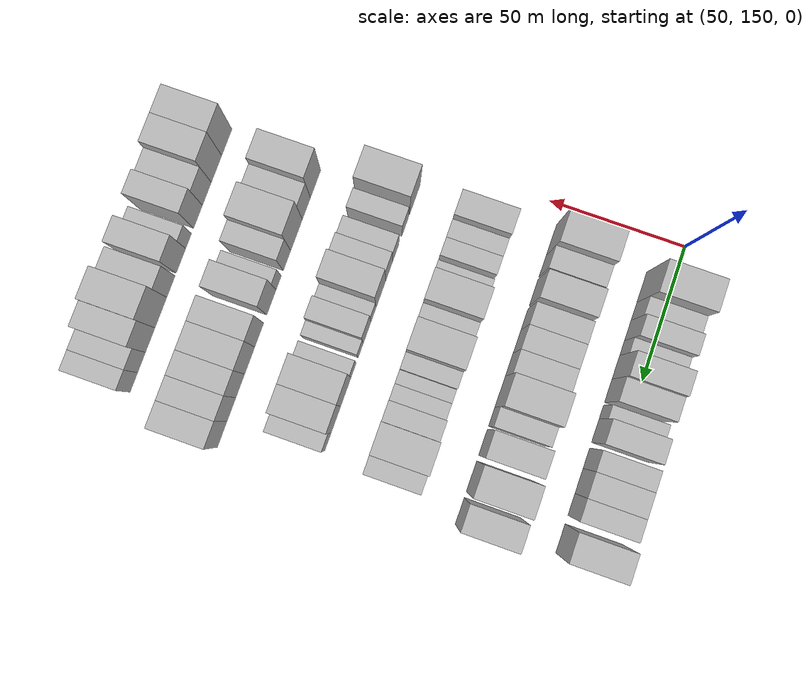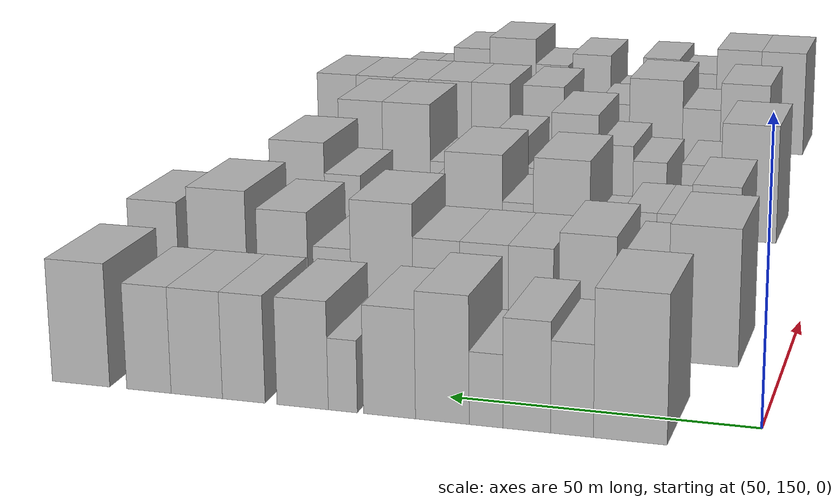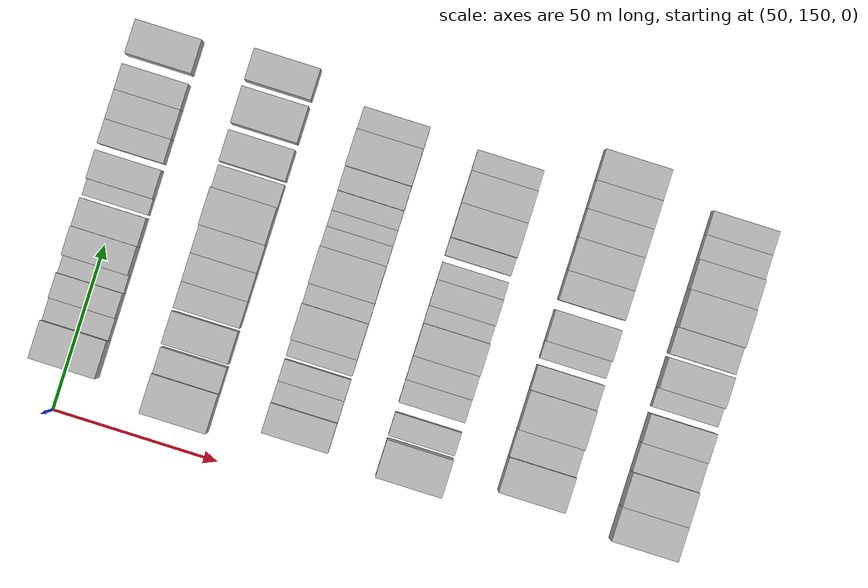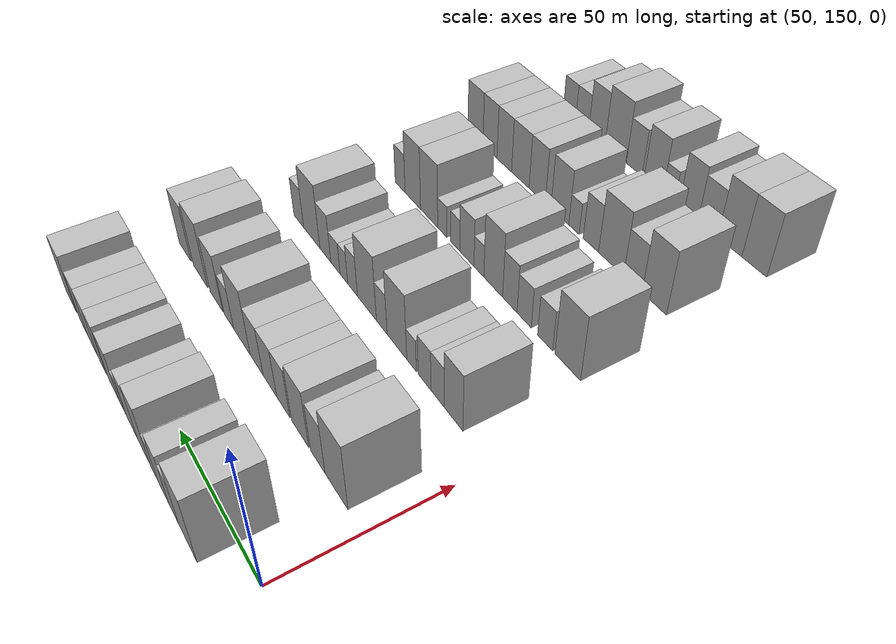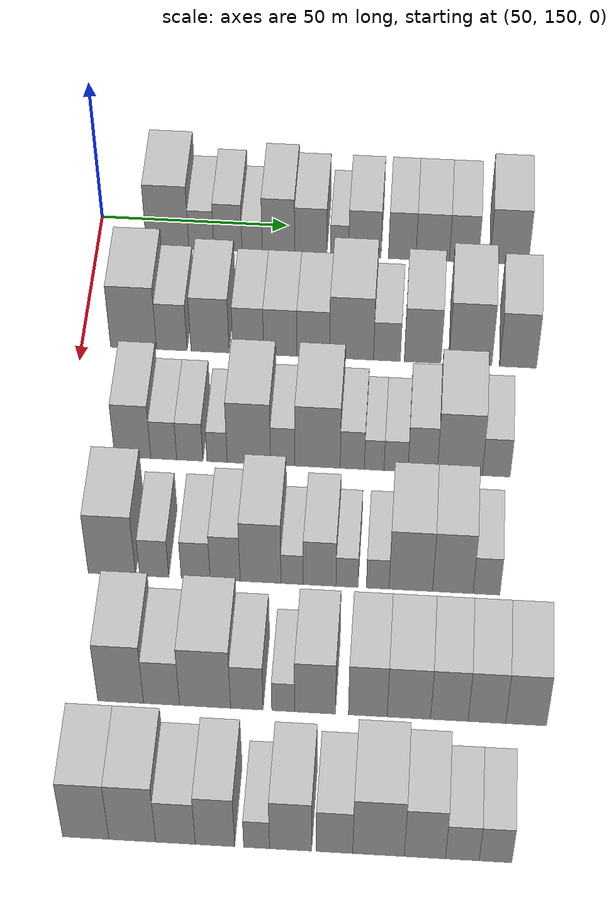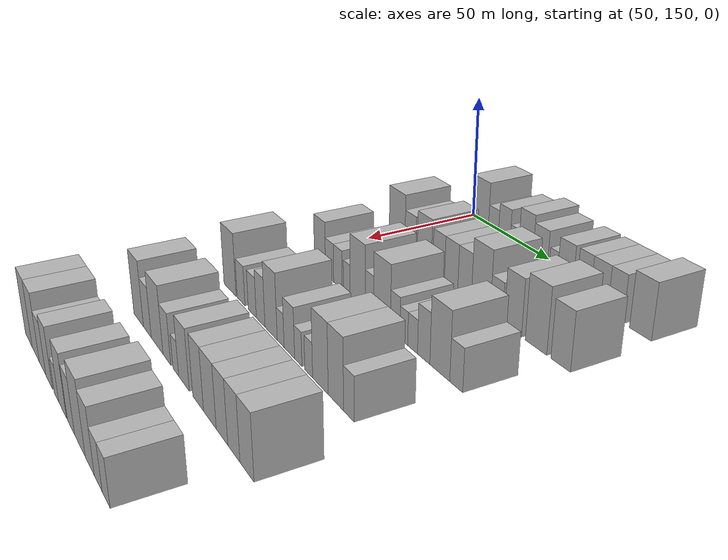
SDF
<sdf version="1.6">
 <world name="default">
  <model name="building_73">
   <static>1</static>
   <pose>50.0000 168.6380 0 0.000000 0.000000 0.000000</pose>
   <link name="link">
    <pose>0 0 12.00 0 0 0</pose>
    <collision name="collision"><geometry><box><size>20.0000 11.3819 24.0000</size></box></geometry></collision>
    <visual name="visual">
     <cast_shadows>0</cast_shadows>
     <geometry><box><size>20.0000 11.3819 24.0000</size></box></geometry>
     <material>
      <script>
       <uri>model://HANNAS_wall/materials/scripts</uri>
       <uri>model://HANNAS_wall/materials/textures</uri>
       <name>vrc/HANNAS_wall</name>
      </script>
     </material>
    </visual>
   </link>
  </model>
  <model name="building_74">
   <static>1</static>
   <pose>50.0000 177.6784 0 0.000000 0.000000 0.000000</pose>
   <link name="link">
    <pose>0 0 7.50 0 0 0</pose>
    <collision name="collision"><geometry><box><size>20.0000 6.6989 15.0000</size></box></geometry></collision>
    <visual name="visual">
     <cast_shadows>0</cast_shadows>
     <geometry><box><size>20.0000 6.6989 15.0000</size></box></geometry>
     <material>
      <script>
       <uri>model://HANNAS_wall/materials/scripts</uri>
       <uri>model://HANNAS_wall/materials/textures</uri>
       <name>vrc/HANNAS_wall</name>
      </script>
     </material>
    </visual>
   </link>
  </model>
  <model name="building_75">
   <static>1</static>
   <pose>50.0000 184.7893 0 0.000000 0.000000 0.000000</pose>
   <link name="link">
    <pose>0 0 9.00 0 0 0</pose>
    <collision name="collision"><geometry><box><size>20.0000 7.5228 18.0000</size></box></geometry></collision>
    <visual name="visual">
     <cast_shadows>0</cast_shadows>
     <geometry><box><size>20.0000 7.5228 18.0000</size></box></geometry>
     <material>
      <script>
       <uri>model://HANNAS_wall/materials/scripts</uri>
       <uri>model://HANNAS_wall/materials/textures</uri>
       <name>vrc/HANNAS_wall</name>
      </script>
     </material>
    </visual>
   </link>
  </model>
  <model name="building_76">
   <static>1</static>
   <pose>50.0000 191.2542 0 0.000000 0.000000 0.000000</pose>
   <link name="link">
    <pose>0 0 6.00 0 0 0</pose>
    <collision name="collision"><geometry><box><size>20.0000 5.4071 12.0000</size></box></geometry></collision>
    <visual name="visual">
     <cast_shadows>0</cast_shadows>
     <geometry><box><size>20.0000 5.4071 12.0000</size></box></geometry>
     <material>
      <script>
       <uri>model://HANNAS_wall/materials/scripts</uri>
       <uri>model://HANNAS_wall/materials/textures</uri>
       <name>vrc/HANNAS_wall</name>
      </script>
     </material>
    </visual>
   </link>
  </model>
  <model name="building_77">
   <static>1</static>
   <pose>50.0000 198.3013 0 0.000000 0.000000 0.000000</pose>
   <link name="link">
    <pose>0 0 10.50 0 0 0</pose>
    <collision name="collision"><geometry><box><size>20.0000 8.6870 21.0000</size></box></geometry></collision>
    <visual name="visual">
     <cast_shadows>0</cast_shadows>
     <geometry><box><size>20.0000 8.6870 21.0000</size></box></geometry>
     <material>
      <script>
       <uri>model://HANNAS_wall/materials/scripts</uri>
       <uri>model://HANNAS_wall/materials/textures</uri>
       <name>vrc/HANNAS_wall</name>
      </script>
     </material>
    </visual>
   </link>
  </model>
  <model name="building_78">
   <static>1</static>
   <pose>50.0000 206.9120 0 0.000000 0.000000 0.000000</pose>
   <link name="link">
    <pose>0 0 9.00 0 0 0</pose>
    <collision name="collision"><geometry><box><size>20.0000 8.5344 18.0000</size></box></geometry></collision>
    <visual name="visual">
     <cast_shadows>0</cast_shadows>
     <geometry><box><size>20.0000 8.5344 18.0000</size></box></geometry>
     <material>
      <script>
       <uri>model://HANNAS_wall/materials/scripts</uri>
       <uri>model://HANNAS_wall/materials/textures</uri>
       <name>vrc/HANNAS_wall</name>
      </script>
     </material>
    </visual>
   </link>
  </model>
  <model name="building_79">
   <static>1</static>
   <pose>50.0000 214.5923 0 0.000000 0.000000 0.000000</pose>
   <link name="link">
    <pose>0 0 6.00 0 0 0</pose>
    <collision name="collision"><geometry><box><size>20.0000 4.8261 12.0000</size></box></geometry></collision>
    <visual name="visual">
     <cast_shadows>0</cast_shadows>
     <geometry><box><size>20.0000 4.8261 12.0000</size></box></geometry>
     <material>
      <script>
       <uri>model://HANNAS_wall/materials/scripts</uri>
       <uri>model://HANNAS_wall/materials/textures</uri>
       <name>vrc/HANNAS_wall</name>
      </script>
     </material>
    </visual>
   </link>
  </model>
  <model name="building_80">
   <static>1</static>
   <pose>50.0000 221.3158 0 0.000000 0.000000 0.000000</pose>
   <link name="link">
    <pose>0 0 9.00 0 0 0</pose>
    <collision name="collision"><geometry><box><size>20.0000 8.6208 18.0000</size></box></geometry></collision>
    <visual name="visual">
     <cast_shadows>0</cast_shadows>
     <geometry><box><size>20.0000 8.6208 18.0000</size></box></geometry>
     <material>
      <script>
       <uri>model://HANNAS_wall/materials/scripts</uri>
       <uri>model://HANNAS_wall/materials/textures</uri>
       <name>vrc/HANNAS_wall</name>
      </script>
     </material>
    </visual>
   </link>
  </model>
  <model name="building_81">
   <static>1</static>
   <pose>50.0000 231.2680 0 0.000000 0.000000 0.000000</pose>
   <link name="link">
    <pose>0 0 9.00 0 0 0</pose>
    <collision name="collision"><geometry><box><size>20.0000 7.2836 18.0000</size></box></geometry></collision>
    <visual name="visual">
     <cast_shadows>0</cast_shadows>
     <geometry><box><size>20.0000 7.2836 18.0000</size></box></geometry>
     <material>
      <script>
       <uri>model://HANNAS_wall/materials/scripts</uri>
       <uri>model://HANNAS_wall/materials/textures</uri>
       <name>vrc/HANNAS_wall</name>
      </script>
     </material>
    </visual>
   </link>
  </model>
  <model name="building_82">
   <static>1</static>
   <pose>50.0000 239.3464 0 0.000000 0.000000 0.000000</pose>
   <link name="link">
    <pose>0 0 9.00 0 0 0</pose>
    <collision name="collision"><geometry><box><size>20.0000 8.8731 18.0000</size></box></geometry></collision>
    <visual name="visual">
     <cast_shadows>0</cast_shadows>
     <geometry><box><size>20.0000 8.8731 18.0000</size></box></geometry>
     <material>
      <script>
       <uri>model://HANNAS_wall/materials/scripts</uri>
       <uri>model://HANNAS_wall/materials/textures</uri>
       <name>vrc/HANNAS_wall</name>
      </script>
     </material>
    </visual>
   </link>
  </model>
  <model name="building_83">
   <static>1</static>
   <pose>50.0000 247.6652 0 0.000000 0.000000 0.000000</pose>
   <link name="link">
    <pose>0 0 9.00 0 0 0</pose>
    <collision name="collision"><geometry><box><size>20.0000 7.7646 18.0000</size></box></geometry></collision>
    <visual name="visual">
     <cast_shadows>0</cast_shadows>
     <geometry><box><size>20.0000 7.7646 18.0000</size></box></geometry>
     <material>
      <script>
       <uri>model://HANNAS_wall/materials/scripts</uri>
       <uri>model://HANNAS_wall/materials/textures</uri>
       <name>vrc/HANNAS_wall</name>
      </script>
     </material>
    </visual>
   </link>
  </model>
  <model name="building_84">
   <static>1</static>
   <pose>50.0000 259.6595 0 0.000000 0.000000 0.000000</pose>
   <link name="link">
    <pose>0 0 10.50 0 0 0</pose>
    <collision name="collision"><geometry><box><size>20.0000 10.2239 21.0000</size></box></geometry></collision>
    <visual name="visual">
     <cast_shadows>0</cast_shadows>
     <geometry><box><size>20.0000 10.2239 21.0000</size></box></geometry>
     <material>
      <script>
       <uri>model://HANNAS_wall/materials/scripts</uri>
       <uri>model://HANNAS_wall/materials/textures</uri>
       <name>vrc/HANNAS_wall</name>
      </script>
     </material>
    </visual>
   </link>
  </model>
  <model name="building_203">
   <static>1</static>
   <pose>85.0000 163.3656 0 0.000000 0.000000 0.000000</pose>
   <link name="link">
    <pose>0 0 12.00 0 0 0</pose>
    <collision name="collision"><geometry><box><size>20.0000 11.8987 24.0000</size></box></geometry></collision>
    <visual name="visual">
     <cast_shadows>0</cast_shadows>
     <geometry><box><size>20.0000 11.8987 24.0000</size></box></geometry>
     <material>
      <script>
       <uri>model://HANNAS_wall/materials/scripts</uri>
       <uri>model://HANNAS_wall/materials/textures</uri>
       <name>vrc/HANNAS_wall</name>
      </script>
     </material>
    </visual>
   </link>
  </model>
  <model name="building_204">
   <static>1</static>
   <pose>85.0000 173.2741 0 0.000000 0.000000 0.000000</pose>
   <link name="link">
    <pose>0 0 9.00 0 0 0</pose>
    <collision name="collision"><geometry><box><size>20.0000 7.9184 18.0000</size></box></geometry></collision>
    <visual name="visual">
     <cast_shadows>0</cast_shadows>
     <geometry><box><size>20.0000 7.9184 18.0000</size></box></geometry>
     <material>
      <script>
       <uri>model://HANNAS_wall/materials/scripts</uri>
       <uri>model://HANNAS_wall/materials/textures</uri>
       <name>vrc/HANNAS_wall</name>
      </script>
     </material>
    </visual>
   </link>
  </model>
  <model name="building_205">
   <static>1</static>
   <pose>85.0000 183.1590 0 0.000000 0.000000 0.000000</pose>
   <link name="link">
    <pose>0 0 10.50 0 0 0</pose>
    <collision name="collision"><geometry><box><size>20.0000 9.8513 21.0000</size></box></geometry></collision>
    <visual name="visual">
     <cast_shadows>0</cast_shadows>
     <geometry><box><size>20.0000 9.8513 21.0000</size></box></geometry>
     <material>
      <script>
       <uri>model://HANNAS_wall/materials/scripts</uri>
       <uri>model://HANNAS_wall/materials/textures</uri>
       <name>vrc/HANNAS_wall</name>
      </script>
     </material>
    </visual>
   </link>
  </model>
  <model name="building_206">
   <static>1</static>
   <pose>85.0000 193.0491 0 0.000000 0.000000 0.000000</pose>
   <link name="link">
    <pose>0 0 9.00 0 0 0</pose>
    <collision name="collision"><geometry><box><size>20.0000 7.9290 18.0000</size></box></geometry></collision>
    <visual name="visual">
     <cast_shadows>0</cast_shadows>
     <geometry><box><size>20.0000 7.9290 18.0000</size></box></geometry>
     <material>
      <script>
       <uri>model://HANNAS_wall/materials/scripts</uri>
       <uri>model://HANNAS_wall/materials/textures</uri>
       <name>vrc/HANNAS_wall</name>
      </script>
     </material>
    </visual>
   </link>
  </model>
  <model name="building_207">
   <static>1</static>
   <pose>85.0000 201.2965 0 0.000000 0.000000 0.000000</pose>
   <link name="link">
    <pose>0 0 9.00 0 0 0</pose>
    <collision name="collision"><geometry><box><size>20.0000 8.5658 18.0000</size></box></geometry></collision>
    <visual name="visual">
     <cast_shadows>0</cast_shadows>
     <geometry><box><size>20.0000 8.5658 18.0000</size></box></geometry>
     <material>
      <script>
       <uri>model://HANNAS_wall/materials/scripts</uri>
       <uri>model://HANNAS_wall/materials/textures</uri>
       <name>vrc/HANNAS_wall</name>
      </script>
     </material>
    </visual>
   </link>
  </model>
  <model name="building_208">
   <static>1</static>
   <pose>85.0000 209.7942 0 0.000000 0.000000 0.000000</pose>
   <link name="link">
    <pose>0 0 9.00 0 0 0</pose>
    <collision name="collision"><geometry><box><size>20.0000 8.4296 18.0000</size></box></geometry></collision>
    <visual name="visual">
     <cast_shadows>0</cast_shadows>
     <geometry><box><size>20.0000 8.4296 18.0000</size></box></geometry>
     <material>
      <script>
       <uri>model://HANNAS_wall/materials/scripts</uri>
       <uri>model://HANNAS_wall/materials/textures</uri>
       <name>vrc/HANNAS_wall</name>
      </script>
     </material>
    </visual>
   </link>
  </model>
  <model name="building_209">
   <static>1</static>
   <pose>85.0000 219.6499 0 0.000000 0.000000 0.000000</pose>
   <link name="link">
    <pose>0 0 12.00 0 0 0</pose>
    <collision name="collision"><geometry><box><size>20.0000 11.2817 24.0000</size></box></geometry></collision>
    <visual name="visual">
     <cast_shadows>0</cast_shadows>
     <geometry><box><size>20.0000 11.2817 24.0000</size></box></geometry>
     <material>
      <script>
       <uri>model://HANNAS_wall/materials/scripts</uri>
       <uri>model://HANNAS_wall/materials/textures</uri>
       <name>vrc/HANNAS_wall</name>
      </script>
     </material>
    </visual>
   </link>
  </model>
  <model name="building_210">
   <static>1</static>
   <pose>85.0000 228.7415 0 0.000000 0.000000 0.000000</pose>
   <link name="link">
    <pose>0 0 7.50 0 0 0</pose>
    <collision name="collision"><geometry><box><size>20.0000 6.9014 15.0000</size></box></geometry></collision>
    <visual name="visual">
     <cast_shadows>0</cast_shadows>
     <geometry><box><size>20.0000 6.9014 15.0000</size></box></geometry>
     <material>
      <script>
       <uri>model://HANNAS_wall/materials/scripts</uri>
       <uri>model://HANNAS_wall/materials/textures</uri>
       <name>vrc/HANNAS_wall</name>
      </script>
     </material>
    </visual>
   </link>
  </model>
  <model name="building_211">
   <static>1</static>
   <pose>85.0000 237.8938 0 0.000000 0.000000 0.000000</pose>
   <link name="link">
    <pose>0 0 10.50 0 0 0</pose>
    <collision name="collision"><geometry><box><size>20.0000 9.4034 21.0000</size></box></geometry></collision>
    <visual name="visual">
     <cast_shadows>0</cast_shadows>
     <geometry><box><size>20.0000 9.4034 21.0000</size></box></geometry>
     <material>
      <script>
       <uri>model://HANNAS_wall/materials/scripts</uri>
       <uri>model://HANNAS_wall/materials/textures</uri>
       <name>vrc/HANNAS_wall</name>
      </script>
     </material>
    </visual>
   </link>
  </model>
  <model name="building_212">
   <static>1</static>
   <pose>85.0000 250.1115 0 0.000000 0.000000 0.000000</pose>
   <link name="link">
    <pose>0 0 12.00 0 0 0</pose>
    <collision name="collision"><geometry><box><size>20.0000 11.0319 24.0000</size></box></geometry></collision>
    <visual name="visual">
     <cast_shadows>0</cast_shadows>
     <geometry><box><size>20.0000 11.0319 24.0000</size></box></geometry>
     <material>
      <script>
       <uri>model://HANNAS_wall/materials/scripts</uri>
       <uri>model://HANNAS_wall/materials/textures</uri>
       <name>vrc/HANNAS_wall</name>
      </script>
     </material>
    </visual>
   </link>
  </model>
  <model name="building_213">
   <static>1</static>
   <pose>85.0000 262.3470 0 0.000000 0.000000 0.000000</pose>
   <link name="link">
    <pose>0 0 10.50 0 0 0</pose>
    <collision name="collision"><geometry><box><size>20.0000 9.4391 21.0000</size></box></geometry></collision>
    <visual name="visual">
     <cast_shadows>0</cast_shadows>
     <geometry><box><size>20.0000 9.4391 21.0000</size></box></geometry>
     <material>
      <script>
       <uri>model://HANNAS_wall/materials/scripts</uri>
       <uri>model://HANNAS_wall/materials/textures</uri>
       <name>vrc/HANNAS_wall</name>
      </script>
     </material>
    </visual>
   </link>
  </model>
  <model name="building_331">
   <static>1</static>
   <pose>120.0000 167.0163 0 0.000000 0.000000 0.000000</pose>
   <link name="link">
    <pose>0 0 10.50 0 0 0</pose>
    <collision name="collision"><geometry><box><size>20.0000 9.0252 21.0000</size></box></geometry></collision>
    <visual name="visual">
     <cast_shadows>0</cast_shadows>
     <geometry><box><size>20.0000 9.0252 21.0000</size></box></geometry>
     <material>
      <script>
       <uri>model://HANNAS_wall/materials/scripts</uri>
       <uri>model://HANNAS_wall/materials/textures</uri>
       <name>vrc/HANNAS_wall</name>
      </script>
     </material>
    </visual>
   </link>
  </model>
  <model name="building_332">
   <static>1</static>
   <pose>120.0000 174.7617 0 0.000000 0.000000 0.000000</pose>
   <link name="link">
    <pose>0 0 7.50 0 0 0</pose>
    <collision name="collision"><geometry><box><size>20.0000 6.4657 15.0000</size></box></geometry></collision>
    <visual name="visual">
     <cast_shadows>0</cast_shadows>
     <geometry><box><size>20.0000 6.4657 15.0000</size></box></geometry>
     <material>
      <script>
       <uri>model://HANNAS_wall/materials/scripts</uri>
       <uri>model://HANNAS_wall/materials/textures</uri>
       <name>vrc/HANNAS_wall</name>
      </script>
     </material>
    </visual>
   </link>
  </model>
  <model name="building_333">
   <static>1</static>
   <pose>120.0000 181.2656 0 0.000000 0.000000 0.000000</pose>
   <link name="link">
    <pose>0 0 7.50 0 0 0</pose>
    <collision name="collision"><geometry><box><size>20.0000 6.5421 15.0000</size></box></geometry></collision>
    <visual name="visual">
     <cast_shadows>0</cast_shadows>
     <geometry><box><size>20.0000 6.5421 15.0000</size></box></geometry>
     <material>
      <script>
       <uri>model://HANNAS_wall/materials/scripts</uri>
       <uri>model://HANNAS_wall/materials/textures</uri>
       <name>vrc/HANNAS_wall</name>
      </script>
     </material>
    </visual>
   </link>
  </model>
  <model name="building_334">
   <static>1</static>
   <pose>120.0000 188.0616 0 0.000000 0.000000 0.000000</pose>
   <link name="link">
    <pose>0 0 6.00 0 0 0</pose>
    <collision name="collision"><geometry><box><size>20.0000 5.0499 12.0000</size></box></geometry></collision>
    <visual name="visual">
     <cast_shadows>0</cast_shadows>
     <geometry><box><size>20.0000 5.0499 12.0000</size></box></geometry>
     <material>
      <script>
       <uri>model://HANNAS_wall/materials/scripts</uri>
       <uri>model://HANNAS_wall/materials/textures</uri>
       <name>vrc/HANNAS_wall</name>
      </script>
     </material>
    </visual>
   </link>
  </model>
  <model name="building_335">
   <static>1</static>
   <pose>120.0000 195.9981 0 0.000000 0.000000 0.000000</pose>
   <link name="link">
    <pose>0 0 12.00 0 0 0</pose>
    <collision name="collision"><geometry><box><size>20.0000 10.8229 24.0000</size></box></geometry></collision>
    <visual name="visual">
     <cast_shadows>0</cast_shadows>
     <geometry><box><size>20.0000 10.8229 24.0000</size></box></geometry>
     <material>
      <script>
       <uri>model://HANNAS_wall/materials/scripts</uri>
       <uri>model://HANNAS_wall/materials/textures</uri>
       <name>vrc/HANNAS_wall</name>
      </script>
     </material>
    </visual>
   </link>
  </model>
  <model name="building_336">
   <static>1</static>
   <pose>120.0000 204.4289 0 0.000000 0.000000 0.000000</pose>
   <link name="link">
    <pose>0 0 7.50 0 0 0</pose>
    <collision name="collision"><geometry><box><size>20.0000 6.0387 15.0000</size></box></geometry></collision>
    <visual name="visual">
     <cast_shadows>0</cast_shadows>
     <geometry><box><size>20.0000 6.0387 15.0000</size></box></geometry>
     <material>
      <script>
       <uri>model://HANNAS_wall/materials/scripts</uri>
       <uri>model://HANNAS_wall/materials/textures</uri>
       <name>vrc/HANNAS_wall</name>
      </script>
     </material>
    </visual>
   </link>
  </model>
  <model name="building_337">
   <static>1</static>
   <pose>120.0000 213.0541 0 0.000000 0.000000 0.000000</pose>
   <link name="link">
    <pose>0 0 12.00 0 0 0</pose>
    <collision name="collision"><geometry><box><size>20.0000 11.2118 24.0000</size></box></geometry></collision>
    <visual name="visual">
     <cast_shadows>0</cast_shadows>
     <geometry><box><size>20.0000 11.2118 24.0000</size></box></geometry>
     <material>
      <script>
       <uri>model://HANNAS_wall/materials/scripts</uri>
       <uri>model://HANNAS_wall/materials/textures</uri>
       <name>vrc/HANNAS_wall</name>
      </script>
     </material>
    </visual>
   </link>
  </model>
  <model name="building_338">
   <static>1</static>
   <pose>120.0000 221.6618 0 0.000000 0.000000 0.000000</pose>
   <link name="link">
    <pose>0 0 7.50 0 0 0</pose>
    <collision name="collision"><geometry><box><size>20.0000 6.0037 15.0000</size></box></geometry></collision>
    <visual name="visual">
     <cast_shadows>0</cast_shadows>
     <geometry><box><size>20.0000 6.0037 15.0000</size></box></geometry>
     <material>
      <script>
       <uri>model://HANNAS_wall/materials/scripts</uri>
       <uri>model://HANNAS_wall/materials/textures</uri>
       <name>vrc/HANNAS_wall</name>
      </script>
     </material>
    </visual>
   </link>
  </model>
  <model name="building_339">
   <static>1</static>
   <pose>120.0000 227.0990 0 0.000000 0.000000 0.000000</pose>
   <link name="link">
    <pose>0 0 6.00 0 0 0</pose>
    <collision name="collision"><geometry><box><size>20.0000 4.8706 12.0000</size></box></geometry></collision>
    <visual name="visual">
     <cast_shadows>0</cast_shadows>
     <geometry><box><size>20.0000 4.8706 12.0000</size></box></geometry>
     <material>
      <script>
       <uri>model://HANNAS_wall/materials/scripts</uri>
       <uri>model://HANNAS_wall/materials/textures</uri>
       <name>vrc/HANNAS_wall</name>
      </script>
     </material>
    </visual>
   </link>
  </model>
  <model name="building_340">
   <static>1</static>
   <pose>120.0000 232.4921 0 0.000000 0.000000 0.000000</pose>
   <link name="link">
    <pose>0 0 6.00 0 0 0</pose>
    <collision name="collision"><geometry><box><size>20.0000 5.9156 12.0000</size></box></geometry></collision>
    <visual name="visual">
     <cast_shadows>0</cast_shadows>
     <geometry><box><size>20.0000 5.9156 12.0000</size></box></geometry>
     <material>
      <script>
       <uri>model://HANNAS_wall/materials/scripts</uri>
       <uri>model://HANNAS_wall/materials/textures</uri>
       <name>vrc/HANNAS_wall</name>
      </script>
     </material>
    </visual>
   </link>
  </model>
  <model name="building_341">
   <static>1</static>
   <pose>120.0000 239.0733 0 0.000000 0.000000 0.000000</pose>
   <link name="link">
    <pose>0 0 9.00 0 0 0</pose>
    <collision name="collision"><geometry><box><size>20.0000 7.2468 18.0000</size></box></geometry></collision>
    <visual name="visual">
     <cast_shadows>0</cast_shadows>
     <geometry><box><size>20.0000 7.2468 18.0000</size></box></geometry>
     <material>
      <script>
       <uri>model://HANNAS_wall/materials/scripts</uri>
       <uri>model://HANNAS_wall/materials/textures</uri>
       <name>vrc/HANNAS_wall</name>
      </script>
     </material>
    </visual>
   </link>
  </model>
  <model name="building_342">
   <static>1</static>
   <pose>120.0000 248.2654 0 0.000000 0.000000 0.000000</pose>
   <link name="link">
    <pose>0 0 12.00 0 0 0</pose>
    <collision name="collision"><geometry><box><size>20.0000 11.1375 24.0000</size></box></geometry></collision>
    <visual name="visual">
     <cast_shadows>0</cast_shadows>
     <geometry><box><size>20.0000 11.1375 24.0000</size></box></geometry>
     <material>
      <script>
       <uri>model://HANNAS_wall/materials/scripts</uri>
       <uri>model://HANNAS_wall/materials/textures</uri>
       <name>vrc/HANNAS_wall</name>
      </script>
     </material>
    </visual>
   </link>
  </model>
  <model name="building_343">
   <static>1</static>
   <pose>120.0000 257.2811 0 0.000000 0.000000 0.000000</pose>
   <link name="link">
    <pose>0 0 7.50 0 0 0</pose>
    <collision name="collision"><geometry><box><size>20.0000 6.8939 15.0000</size></box></geometry></collision>
    <visual name="visual">
     <cast_shadows>0</cast_shadows>
     <geometry><box><size>20.0000 6.8939 15.0000</size></box></geometry>
     <material>
      <script>
       <uri>model://HANNAS_wall/materials/scripts</uri>
       <uri>model://HANNAS_wall/materials/textures</uri>
       <name>vrc/HANNAS_wall</name>
      </script>
     </material>
    </visual>
   </link>
  </model>
  <model name="building_463">
   <static>1</static>
   <pose>155.0000 165.8722 0 0.000000 0.000000 0.000000</pose>
   <link name="link">
    <pose>0 0 12.00 0 0 0</pose>
    <collision name="collision"><geometry><box><size>20.0000 11.3779 24.0000</size></box></geometry></collision>
    <visual name="visual">
     <cast_shadows>0</cast_shadows>
     <geometry><box><size>20.0000 11.3779 24.0000</size></box></geometry>
     <material>
      <script>
       <uri>model://HANNAS_wall/materials/scripts</uri>
       <uri>model://HANNAS_wall/materials/textures</uri>
       <name>vrc/HANNAS_wall</name>
      </script>
     </material>
    </visual>
   </link>
  </model>
  <model name="building_464">
   <static>1</static>
   <pose>155.0000 176.0579 0 0.000000 0.000000 0.000000</pose>
   <link name="link">
    <pose>0 0 7.50 0 0 0</pose>
    <collision name="collision"><geometry><box><size>20.0000 6.9935 15.0000</size></box></geometry></collision>
    <visual name="visual">
     <cast_shadows>0</cast_shadows>
     <geometry><box><size>20.0000 6.9935 15.0000</size></box></geometry>
     <material>
      <script>
       <uri>model://HANNAS_wall/materials/scripts</uri>
       <uri>model://HANNAS_wall/materials/textures</uri>
       <name>vrc/HANNAS_wall</name>
      </script>
     </material>
    </visual>
   </link>
  </model>
  <model name="building_465">
   <static>1</static>
   <pose>155.0000 186.0066 0 0.000000 0.000000 0.000000</pose>
   <link name="link">
    <pose>0 0 7.50 0 0 0</pose>
    <collision name="collision"><geometry><box><size>20.0000 6.9038 15.0000</size></box></geometry></collision>
    <visual name="visual">
     <cast_shadows>0</cast_shadows>
     <geometry><box><size>20.0000 6.9038 15.0000</size></box></geometry>
     <material>
      <script>
       <uri>model://HANNAS_wall/materials/scripts</uri>
       <uri>model://HANNAS_wall/materials/textures</uri>
       <name>vrc/HANNAS_wall</name>
      </script>
     </material>
    </visual>
   </link>
  </model>
  <model name="building_466">
   <static>1</static>
   <pose>155.0000 193.0714 0 0.000000 0.000000 0.000000</pose>
   <link name="link">
    <pose>0 0 9.00 0 0 0</pose>
    <collision name="collision"><geometry><box><size>20.0000 7.2258 18.0000</size></box></geometry></collision>
    <visual name="visual">
     <cast_shadows>0</cast_shadows>
     <geometry><box><size>20.0000 7.2258 18.0000</size></box></geometry>
     <material>
      <script>
       <uri>model://HANNAS_wall/materials/scripts</uri>
       <uri>model://HANNAS_wall/materials/textures</uri>
       <name>vrc/HANNAS_wall</name>
      </script>
     </material>
    </visual>
   </link>
  </model>
  <model name="building_467">
   <static>1</static>
   <pose>155.0000 201.5711 0 0.000000 0.000000 0.000000</pose>
   <link name="link">
    <pose>0 0 12.00 0 0 0</pose>
    <collision name="collision"><geometry><box><size>20.0000 9.7734 24.0000</size></box></geometry></collision>
    <visual name="visual">
     <cast_shadows>0</cast_shadows>
     <geometry><box><size>20.0000 9.7734 24.0000</size></box></geometry>
     <material>
      <script>
       <uri>model://HANNAS_wall/materials/scripts</uri>
       <uri>model://HANNAS_wall/materials/textures</uri>
       <name>vrc/HANNAS_wall</name>
      </script>
     </material>
    </visual>
   </link>
  </model>
  <model name="building_468">
   <static>1</static>
   <pose>155.0000 209.1190 0 0.000000 0.000000 0.000000</pose>
   <link name="link">
    <pose>0 0 6.00 0 0 0</pose>
    <collision name="collision"><geometry><box><size>20.0000 5.3224 12.0000</size></box></geometry></collision>
    <visual name="visual">
     <cast_shadows>0</cast_shadows>
     <geometry><box><size>20.0000 5.3224 12.0000</size></box></geometry>
     <material>
      <script>
       <uri>model://HANNAS_wall/materials/scripts</uri>
       <uri>model://HANNAS_wall/materials/textures</uri>
       <name>vrc/HANNAS_wall</name>
      </script>
     </material>
    </visual>
   </link>
  </model>
  <model name="building_469">
   <static>1</static>
   <pose>155.0000 215.6907 0 0.000000 0.000000 0.000000</pose>
   <link name="link">
    <pose>0 0 9.00 0 0 0</pose>
    <collision name="collision"><geometry><box><size>20.0000 7.8210 18.0000</size></box></geometry></collision>
    <visual name="visual">
     <cast_shadows>0</cast_shadows>
     <geometry><box><size>20.0000 7.8210 18.0000</size></box></geometry>
     <material>
      <script>
       <uri>model://HANNAS_wall/materials/scripts</uri>
       <uri>model://HANNAS_wall/materials/textures</uri>
       <name>vrc/HANNAS_wall</name>
      </script>
     </material>
    </visual>
   </link>
  </model>
  <model name="building_470">
   <static>1</static>
   <pose>155.0000 222.2373 0 0.000000 0.000000 0.000000</pose>
   <link name="link">
    <pose>0 0 6.00 0 0 0</pose>
    <collision name="collision"><geometry><box><size>20.0000 5.2723 12.0000</size></box></geometry></collision>
    <visual name="visual">
     <cast_shadows>0</cast_shadows>
     <geometry><box><size>20.0000 5.2723 12.0000</size></box></geometry>
     <material>
      <script>
       <uri>model://HANNAS_wall/materials/scripts</uri>
       <uri>model://HANNAS_wall/materials/textures</uri>
       <name>vrc/HANNAS_wall</name>
      </script>
     </material>
    </visual>
   </link>
  </model>
  <model name="building_471">
   <static>1</static>
   <pose>155.0000 229.5753 0 0.000000 0.000000 0.000000</pose>
   <link name="link">
    <pose>0 0 6.00 0 0 0</pose>
    <collision name="collision"><geometry><box><size>20.0000 5.4036 12.0000</size></box></geometry></collision>
    <visual name="visual">
     <cast_shadows>0</cast_shadows>
     <geometry><box><size>20.0000 5.4036 12.0000</size></box></geometry>
     <material>
      <script>
       <uri>model://HANNAS_wall/materials/scripts</uri>
       <uri>model://HANNAS_wall/materials/textures</uri>
       <name>vrc/HANNAS_wall</name>
      </script>
     </material>
    </visual>
   </link>
  </model>
  <model name="building_472">
   <static>1</static>
   <pose>155.0000 237.4523 0 0.000000 0.000000 0.000000</pose>
   <link name="link">
    <pose>0 0 12.00 0 0 0</pose>
    <collision name="collision"><geometry><box><size>20.0000 10.3504 24.0000</size></box></geometry></collision>
    <visual name="visual">
     <cast_shadows>0</cast_shadows>
     <geometry><box><size>20.0000 10.3504 24.0000</size></box></geometry>
     <material>
      <script>
       <uri>model://HANNAS_wall/materials/scripts</uri>
       <uri>model://HANNAS_wall/materials/textures</uri>
       <name>vrc/HANNAS_wall</name>
      </script>
     </material>
    </visual>
   </link>
  </model>
  <model name="building_473">
   <static>1</static>
   <pose>155.0000 247.4533 0 0.000000 0.000000 0.000000</pose>
   <link name="link">
    <pose>0 0 12.00 0 0 0</pose>
    <collision name="collision"><geometry><box><size>20.0000 9.6515 24.0000</size></box></geometry></collision>
    <visual name="visual">
     <cast_shadows>0</cast_shadows>
     <geometry><box><size>20.0000 9.6515 24.0000</size></box></geometry>
     <material>
      <script>
       <uri>model://HANNAS_wall/materials/scripts</uri>
       <uri>model://HANNAS_wall/materials/textures</uri>
       <name>vrc/HANNAS_wall</name>
      </script>
     </material>
    </visual>
   </link>
  </model>
  <model name="building_474">
   <static>1</static>
   <pose>155.0000 255.4719 0 0.000000 0.000000 0.000000</pose>
   <link name="link">
    <pose>0 0 7.50 0 0 0</pose>
    <collision name="collision"><geometry><box><size>20.0000 6.3858 15.0000</size></box></geometry></collision>
    <visual name="visual">
     <cast_shadows>0</cast_shadows>
     <geometry><box><size>20.0000 6.3858 15.0000</size></box></geometry>
     <material>
      <script>
       <uri>model://HANNAS_wall/materials/scripts</uri>
       <uri>model://HANNAS_wall/materials/textures</uri>
       <name>vrc/HANNAS_wall</name>
      </script>
     </material>
    </visual>
   </link>
  </model>
  <model name="building_594">
   <static>1</static>
   <pose>190.0000 171.9593 0 0.000000 0.000000 0.000000</pose>
   <link name="link">
    <pose>0 0 12.00 0 0 0</pose>
    <collision name="collision"><geometry><box><size>20.0000 10.5848 24.0000</size></box></geometry></collision>
    <visual name="visual">
     <cast_shadows>0</cast_shadows>
     <geometry><box><size>20.0000 10.5848 24.0000</size></box></geometry>
     <material>
      <script>
       <uri>model://HANNAS_wall/materials/scripts</uri>
       <uri>model://HANNAS_wall/materials/textures</uri>
       <name>vrc/HANNAS_wall</name>
      </script>
     </material>
    </visual>
   </link>
  </model>
  <model name="building_595">
   <static>1</static>
   <pose>190.0000 181.3984 0 0.000000 0.000000 0.000000</pose>
   <link name="link">
    <pose>0 0 9.00 0 0 0</pose>
    <collision name="collision"><geometry><box><size>20.0000 8.2934 18.0000</size></box></geometry></collision>
    <visual name="visual">
     <cast_shadows>0</cast_shadows>
     <geometry><box><size>20.0000 8.2934 18.0000</size></box></geometry>
     <material>
      <script>
       <uri>model://HANNAS_wall/materials/scripts</uri>
       <uri>model://HANNAS_wall/materials/textures</uri>
       <name>vrc/HANNAS_wall</name>
      </script>
     </material>
    </visual>
   </link>
  </model>
  <model name="building_596">
   <static>1</static>
   <pose>190.0000 191.4427 0 0.000000 0.000000 0.000000</pose>
   <link name="link">
    <pose>0 0 12.00 0 0 0</pose>
    <collision name="collision"><geometry><box><size>20.0000 11.7952 24.0000</size></box></geometry></collision>
    <visual name="visual">
     <cast_shadows>0</cast_shadows>
     <geometry><box><size>20.0000 11.7952 24.0000</size></box></geometry>
     <material>
      <script>
       <uri>model://HANNAS_wall/materials/scripts</uri>
       <uri>model://HANNAS_wall/materials/textures</uri>
       <name>vrc/HANNAS_wall</name>
      </script>
     </material>
    </visual>
   </link>
  </model>
  <model name="building_597">
   <static>1</static>
   <pose>190.0000 201.0932 0 0.000000 0.000000 0.000000</pose>
   <link name="link">
    <pose>0 0 9.00 0 0 0</pose>
    <collision name="collision"><geometry><box><size>20.0000 7.5058 18.0000</size></box></geometry></collision>
    <visual name="visual">
     <cast_shadows>0</cast_shadows>
     <geometry><box><size>20.0000 7.5058 18.0000</size></box></geometry>
     <material>
      <script>
       <uri>model://HANNAS_wall/materials/scripts</uri>
       <uri>model://HANNAS_wall/materials/textures</uri>
       <name>vrc/HANNAS_wall</name>
      </script>
     </material>
    </visual>
   </link>
  </model>
  <model name="building_598">
   <static>1</static>
   <pose>190.0000 209.4794 0 0.000000 0.000000 0.000000</pose>
   <link name="link">
    <pose>0 0 6.00 0 0 0</pose>
    <collision name="collision"><geometry><box><size>20.0000 5.2666 12.0000</size></box></geometry></collision>
    <visual name="visual">
     <cast_shadows>0</cast_shadows>
     <geometry><box><size>20.0000 5.2666 12.0000</size></box></geometry>
     <material>
      <script>
       <uri>model://HANNAS_wall/materials/scripts</uri>
       <uri>model://HANNAS_wall/materials/textures</uri>
       <name>vrc/HANNAS_wall</name>
      </script>
     </material>
    </visual>
   </link>
  </model>
  <model name="building_599">
   <static>1</static>
   <pose>190.0000 216.7896 0 0.000000 0.000000 0.000000</pose>
   <link name="link">
    <pose>0 0 10.50 0 0 0</pose>
    <collision name="collision"><geometry><box><size>20.0000 9.3539 21.0000</size></box></geometry></collision>
    <visual name="visual">
     <cast_shadows>0</cast_shadows>
     <geometry><box><size>20.0000 9.3539 21.0000</size></box></geometry>
     <material>
      <script>
       <uri>model://HANNAS_wall/materials/scripts</uri>
       <uri>model://HANNAS_wall/materials/textures</uri>
       <name>vrc/HANNAS_wall</name>
      </script>
     </material>
    </visual>
   </link>
  </model>
  <model name="building_600">
   <static>1</static>
   <pose>190.0000 228.8985 0 0.000000 0.000000 0.000000</pose>
   <link name="link">
    <pose>0 0 10.50 0 0 0</pose>
    <collision name="collision"><geometry><box><size>20.0000 8.8640 21.0000</size></box></geometry></collision>
    <visual name="visual">
     <cast_shadows>0</cast_shadows>
     <geometry><box><size>20.0000 8.8640 21.0000</size></box></geometry>
     <material>
      <script>
       <uri>model://HANNAS_wall/materials/scripts</uri>
       <uri>model://HANNAS_wall/materials/textures</uri>
       <name>vrc/HANNAS_wall</name>
      </script>
     </material>
    </visual>
   </link>
  </model>
  <model name="building_601">
   <static>1</static>
   <pose>190.0000 238.3108 0 0.000000 0.000000 0.000000</pose>
   <link name="link">
    <pose>0 0 10.50 0 0 0</pose>
    <collision name="collision"><geometry><box><size>20.0000 9.9607 21.0000</size></box></geometry></collision>
    <visual name="visual">
     <cast_shadows>0</cast_shadows>
     <geometry><box><size>20.0000 9.9607 21.0000</size></box></geometry>
     <material>
      <script>
       <uri>model://HANNAS_wall/materials/scripts</uri>
       <uri>model://HANNAS_wall/materials/textures</uri>
       <name>vrc/HANNAS_wall</name>
      </script>
     </material>
    </visual>
   </link>
  </model>
  <model name="building_602">
   <static>1</static>
   <pose>190.0000 247.5828 0 0.000000 0.000000 0.000000</pose>
   <link name="link">
    <pose>0 0 10.50 0 0 0</pose>
    <collision name="collision"><geometry><box><size>20.0000 8.5832 21.0000</size></box></geometry></collision>
    <visual name="visual">
     <cast_shadows>0</cast_shadows>
     <geometry><box><size>20.0000 8.5832 21.0000</size></box></geometry>
     <material>
      <script>
       <uri>model://HANNAS_wall/materials/scripts</uri>
       <uri>model://HANNAS_wall/materials/textures</uri>
       <name>vrc/HANNAS_wall</name>
      </script>
     </material>
    </visual>
   </link>
  </model>
  <model name="building_603">
   <static>1</static>
   <pose>190.0000 256.1656 0 0.000000 0.000000 0.000000</pose>
   <link name="link">
    <pose>0 0 10.50 0 0 0</pose>
    <collision name="collision"><geometry><box><size>20.0000 8.5824 21.0000</size></box></geometry></collision>
    <visual name="visual">
     <cast_shadows>0</cast_shadows>
     <geometry><box><size>20.0000 8.5824 21.0000</size></box></geometry>
     <material>
      <script>
       <uri>model://HANNAS_wall/materials/scripts</uri>
       <uri>model://HANNAS_wall/materials/textures</uri>
       <name>vrc/HANNAS_wall</name>
      </script>
     </material>
    </visual>
   </link>
  </model>
  <model name="building_604">
   <static>1</static>
   <pose>190.0000 265.1328 0 0.000000 0.000000 0.000000</pose>
   <link name="link">
    <pose>0 0 10.50 0 0 0</pose>
    <collision name="collision"><geometry><box><size>20.0000 9.3520 21.0000</size></box></geometry></collision>
    <visual name="visual">
     <cast_shadows>0</cast_shadows>
     <geometry><box><size>20.0000 9.3520 21.0000</size></box></geometry>
     <material>
      <script>
       <uri>model://HANNAS_wall/materials/scripts</uri>
       <uri>model://HANNAS_wall/materials/textures</uri>
       <name>vrc/HANNAS_wall</name>
      </script>
     </material>
    </visual>
   </link>
  </model>
  <model name="building_724">
   <static>1</static>
   <pose>225.0000 168.2030 0 0.000000 0.000000 0.000000</pose>
   <link name="link">
    <pose>0 0 12.00 0 0 0</pose>
    <collision name="collision"><geometry><box><size>20.0000 10.2795 24.0000</size></box></geometry></collision>
    <visual name="visual">
     <cast_shadows>0</cast_shadows>
     <geometry><box><size>20.0000 10.2795 24.0000</size></box></geometry>
     <material>
      <script>
       <uri>model://HANNAS_wall/materials/scripts</uri>
       <uri>model://HANNAS_wall/materials/textures</uri>
       <name>vrc/HANNAS_wall</name>
      </script>
     </material>
    </visual>
   </link>
  </model>
  <model name="building_725">
   <static>1</static>
   <pose>225.0000 178.5226 0 0.000000 0.000000 0.000000</pose>
   <link name="link">
    <pose>0 0 12.00 0 0 0</pose>
    <collision name="collision"><geometry><box><size>20.0000 10.3597 24.0000</size></box></geometry></collision>
    <visual name="visual">
     <cast_shadows>0</cast_shadows>
     <geometry><box><size>20.0000 10.3597 24.0000</size></box></geometry>
     <material>
      <script>
       <uri>model://HANNAS_wall/materials/scripts</uri>
       <uri>model://HANNAS_wall/materials/textures</uri>
       <name>vrc/HANNAS_wall</name>
      </script>
     </material>
    </visual>
   </link>
  </model>
  <model name="building_726">
   <static>1</static>
   <pose>225.0000 188.0936 0 0.000000 0.000000 0.000000</pose>
   <link name="link">
    <pose>0 0 9.00 0 0 0</pose>
    <collision name="collision"><geometry><box><size>20.0000 8.7822 18.0000</size></box></geometry></collision>
    <visual name="visual">
     <cast_shadows>0</cast_shadows>
     <geometry><box><size>20.0000 8.7822 18.0000</size></box></geometry>
     <material>
      <script>
       <uri>model://HANNAS_wall/materials/scripts</uri>
       <uri>model://HANNAS_wall/materials/textures</uri>
       <name>vrc/HANNAS_wall</name>
      </script>
     </material>
    </visual>
   </link>
  </model>
  <model name="building_727">
   <static>1</static>
   <pose>225.0000 196.8523 0 0.000000 0.000000 0.000000</pose>
   <link name="link">
    <pose>0 0 10.50 0 0 0</pose>
    <collision name="collision"><geometry><box><size>20.0000 8.7352 21.0000</size></box></geometry></collision>
    <visual name="visual">
     <cast_shadows>0</cast_shadows>
     <geometry><box><size>20.0000 8.7352 21.0000</size></box></geometry>
     <material>
      <script>
       <uri>model://HANNAS_wall/materials/scripts</uri>
       <uri>model://HANNAS_wall/materials/textures</uri>
       <name>vrc/HANNAS_wall</name>
      </script>
     </material>
    </visual>
   </link>
  </model>
  <model name="building_728">
   <static>1</static>
   <pose>225.0000 206.0741 0 0.000000 0.000000 0.000000</pose>
   <link name="link">
    <pose>0 0 6.00 0 0 0</pose>
    <collision name="collision"><geometry><box><size>20.0000 5.7085 12.0000</size></box></geometry></collision>
    <visual name="visual">
     <cast_shadows>0</cast_shadows>
     <geometry><box><size>20.0000 5.7085 12.0000</size></box></geometry>
     <material>
      <script>
       <uri>model://HANNAS_wall/materials/scripts</uri>
       <uri>model://HANNAS_wall/materials/textures</uri>
       <name>vrc/HANNAS_wall</name>
      </script>
     </material>
    </visual>
   </link>
  </model>
  <model name="building_729">
   <static>1</static>
   <pose>225.0000 213.5736 0 0.000000 0.000000 0.000000</pose>
   <link name="link">
    <pose>0 0 10.50 0 0 0</pose>
    <collision name="collision"><geometry><box><size>20.0000 9.2904 21.0000</size></box></geometry></collision>
    <visual name="visual">
     <cast_shadows>0</cast_shadows>
     <geometry><box><size>20.0000 9.2904 21.0000</size></box></geometry>
     <material>
      <script>
       <uri>model://HANNAS_wall/materials/scripts</uri>
       <uri>model://HANNAS_wall/materials/textures</uri>
       <name>vrc/HANNAS_wall</name>
      </script>
     </material>
    </visual>
   </link>
  </model>
  <model name="building_730">
   <static>1</static>
   <pose>225.0000 223.2471 0 0.000000 0.000000 0.000000</pose>
   <link name="link">
    <pose>0 0 9.00 0 0 0</pose>
    <collision name="collision"><geometry><box><size>20.0000 8.0565 18.0000</size></box></geometry></collision>
    <visual name="visual">
     <cast_shadows>0</cast_shadows>
     <geometry><box><size>20.0000 8.0565 18.0000</size></box></geometry>
     <material>
      <script>
       <uri>model://HANNAS_wall/materials/scripts</uri>
       <uri>model://HANNAS_wall/materials/textures</uri>
       <name>vrc/HANNAS_wall</name>
      </script>
     </material>
    </visual>
   </link>
  </model>
  <model name="building_731">
   <static>1</static>
   <pose>225.0000 232.9550 0 0.000000 0.000000 0.000000</pose>
   <link name="link">
    <pose>0 0 12.00 0 0 0</pose>
    <collision name="collision"><geometry><box><size>20.0000 11.3593 24.0000</size></box></geometry></collision>
    <visual name="visual">
     <cast_shadows>0</cast_shadows>
     <geometry><box><size>20.0000 11.3593 24.0000</size></box></geometry>
     <material>
      <script>
       <uri>model://HANNAS_wall/materials/scripts</uri>
       <uri>model://HANNAS_wall/materials/textures</uri>
       <name>vrc/HANNAS_wall</name>
      </script>
     </material>
    </visual>
   </link>
  </model>
  <model name="building_732">
   <static>1</static>
   <pose>225.0000 243.1551 0 0.000000 0.000000 0.000000</pose>
   <link name="link">
    <pose>0 0 10.50 0 0 0</pose>
    <collision name="collision"><geometry><box><size>20.0000 9.0409 21.0000</size></box></geometry></collision>
    <visual name="visual">
     <cast_shadows>0</cast_shadows>
     <geometry><box><size>20.0000 9.0409 21.0000</size></box></geometry>
     <material>
      <script>
       <uri>model://HANNAS_wall/materials/scripts</uri>
       <uri>model://HANNAS_wall/materials/textures</uri>
       <name>vrc/HANNAS_wall</name>
      </script>
     </material>
    </visual>
   </link>
  </model>
  <model name="building_733">
   <static>1</static>
   <pose>225.0000 251.3902 0 0.000000 0.000000 0.000000</pose>
   <link name="link">
    <pose>0 0 7.50 0 0 0</pose>
    <collision name="collision"><geometry><box><size>20.0000 7.4293 15.0000</size></box></geometry></collision>
    <visual name="visual">
     <cast_shadows>0</cast_shadows>
     <geometry><box><size>20.0000 7.4293 15.0000</size></box></geometry>
     <material>
      <script>
       <uri>model://HANNAS_wall/materials/scripts</uri>
       <uri>model://HANNAS_wall/materials/textures</uri>
       <name>vrc/HANNAS_wall</name>
      </script>
     </material>
    </visual>
   </link>
  </model>
  <model name="building_734">
   <static>1</static>
   <pose>225.0000 258.6831 0 0.000000 0.000000 0.000000</pose>
   <link name="link">
    <pose>0 0 7.50 0 0 0</pose>
    <collision name="collision"><geometry><box><size>20.0000 7.1565 15.0000</size></box></geometry></collision>
    <visual name="visual">
     <cast_shadows>0</cast_shadows>
     <geometry><box><size>20.0000 7.1565 15.0000</size></box></geometry>
     <material>
      <script>
       <uri>model://HANNAS_wall/materials/scripts</uri>
       <uri>model://HANNAS_wall/materials/textures</uri>
       <name>vrc/HANNAS_wall</name>
      </script>
     </material>
    </visual>
   </link>
  </model>
 </world>
</sdf>
